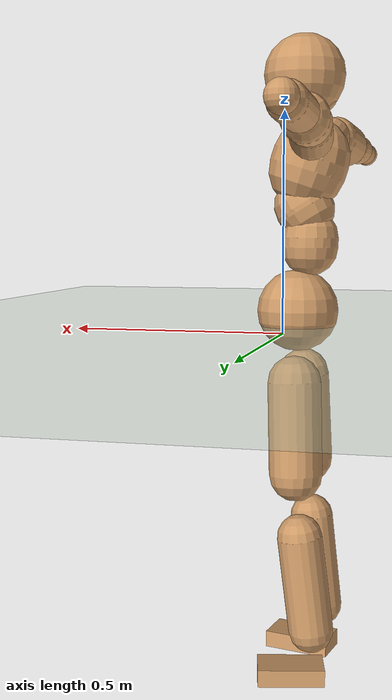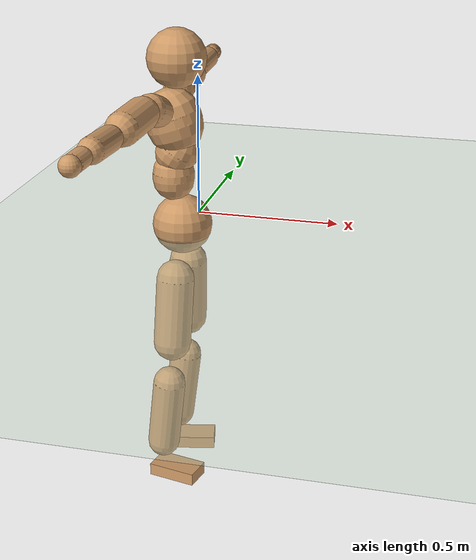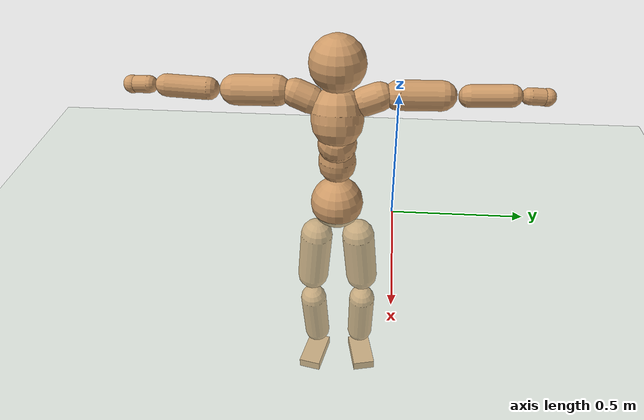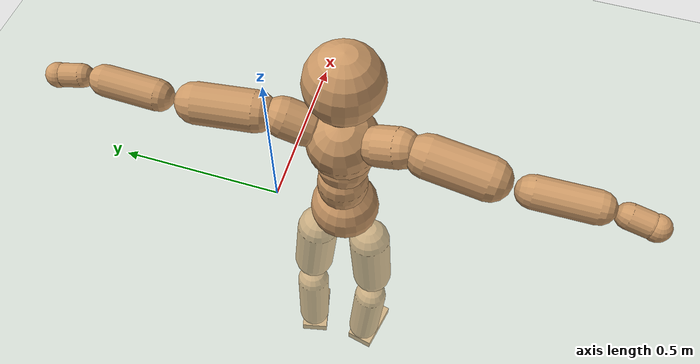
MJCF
<mujoco model="humanoid">
  <compiler coordinate="local"/>
  <default>
    <joint damping="0.0" armature="0.01" stiffness="0.0" limited="true"/>
    <geom conaffinity="1" condim="3" contype="7" margin="0.001" rgba="0.8 0.6 .4 1"/>
  </default>
  <asset>
    <texture type="skybox" builtin="gradient" rgb1=".4 .5 .6" rgb2="0 0 0" width="100" height="100"/>
    <texture builtin="flat" height="1278" mark="cross" markrgb="1 1 1" name="texgeom" random="0.01" rgb1="0.8 0.6 0.4" rgb2="0.8 0.6 0.4" type="cube" width="127"/>
    <texture builtin="checker" height="100" name="texplane" rgb1="0 0 0" rgb2="0.8 0.8 0.8" type="2d" width="100"/>
    <material name="MatPlane" reflectance="0.5" shininess="1" specular="1" texrepeat="60 60" texture="texplane"/>
    <material name="geom" texture="texgeom" texuniform="true"/>
  </asset>
  <worldbody>
    <light cutoff="100" diffuse="1 1 1" dir="-0 0 -1.3" directional="true" exponent="1" pos="0 0 1.3" specular=".1 .1 .1"/>
    <geom conaffinity="1" condim="3" name="floor" pos="0 0 0" rgba="0.8 0.9 0.8 1" size="100 100 .2" type="plane" material="MatPlane"/>
    <body name="Pelvis" pos="0.0014 -0.2156 0.0365">
      <freejoint name="Pelvis"/>
      <geom type="sphere" contype="1" conaffinity="1" density="500" size="0.1015" pos="0.0000 0.0000 0.0000" name="Pelvis"/>
      <body name="L_Hip" pos="-0.0043 0.0791 -0.0939">
        <joint name="L_Hip_x" type="hinge" pos="0 0 0" axis="1 0 0" stiffness="800" damping="80" armature="0.02" range="-180.0000 180.0000"/>
        <joint name="L_Hip_y" type="hinge" pos="0 0 0" axis="0 1 0" stiffness="800" damping="80" armature="0.02" range="-180.0000 180.0000"/>
        <joint name="L_Hip_z" type="hinge" pos="0 0 0" axis="0 0 1" stiffness="800" damping="80" armature="0.02" range="-180.0000 180.0000"/>
        <geom type="capsule" contype="1" conaffinity="1" density="500" fromto="-0.0026 0.0059 -0.0753 -0.0106 0.0234 -0.3013" size="0.0652" name="L_Hip"/>
        <body name="L_Knee" pos="-0.0132 0.0293 -0.3766">
          <joint name="L_Knee_x" type="hinge" pos="0 0 0" axis="1 0 0" stiffness="800" damping="80" armature="0.02" range="-180.0000 180.0000"/>
          <joint name="L_Knee_y" type="hinge" pos="0 0 0" axis="0 1 0" stiffness="800" damping="80" armature="0.02" range="-180.0000 180.0000"/>
          <joint name="L_Knee_z" type="hinge" pos="0 0 0" axis="0 0 1" stiffness="800" damping="80" armature="0.02" range="-180.0000 180.0000"/>
          <geom type="capsule" contype="1" conaffinity="1" density="500" fromto="-0.0096 -0.0024 -0.0802 -0.0386 -0.0096 -0.3208" size="0.0557" name="L_Knee"/>
          <body name="L_Ankle" pos="-0.0482 -0.012 -0.401">
            <joint name="L_Ankle_x" type="hinge" pos="0 0 0" axis="1 0 0" stiffness="800" damping="80" armature="0.02" range="-180.0000 180.0000"/>
            <joint name="L_Ankle_y" type="hinge" pos="0 0 0" axis="0 1 0" stiffness="800" damping="80" armature="0.02" range="-180.0000 180.0000"/>
            <joint name="L_Ankle_z" type="hinge" pos="0 0 0" axis="0 0 1" stiffness="800" damping="80" armature="0.02" range="-180.0000 180.0000"/>
            <geom type="box" contype="1" conaffinity="1" density="500" pos="0.0585 0.0129 -0.0286" size="0.083 0.0476 0.0216" quat="0.9941 0.0000 0.0000 0.1082" name="L_Ankle"/>
            <body name="L_Toe" pos="0.117 0.0258 -0.0572">
              <joint name="L_Toe_x" type="hinge" pos="0 0 0" axis="1 0 0" stiffness="500" damping="50" armature="0.02" range="-180.0000 180.0000"/>
              <joint name="L_Toe_y" type="hinge" pos="0 0 0" axis="0 1 0" stiffness="500" damping="50" armature="0.02" range="-180.0000 180.0000"/>
              <joint name="L_Toe_z" type="hinge" pos="0 0 0" axis="0 0 1" stiffness="500" damping="50" armature="0.02" range="-180.0000 180.0000"/>
              <geom type="box" contype="1" conaffinity="1" density="500" pos="0.0000 0.0000 0.0280" size="0.001 0.0024 0.001" quat="0.9934 0.0000 0.0000 0.1143" name="L_Toe"/>
            </body>
          </body>
        </body>
      </body>
      <body name="R_Hip" pos="-0.0006 -0.0764 -0.0939">
        <joint name="R_Hip_x" type="hinge" pos="0 0 0" axis="1 0 0" stiffness="800" damping="80" armature="0.02" range="-180.0000 180.0000"/>
        <joint name="R_Hip_y" type="hinge" pos="0 0 0" axis="0 1 0" stiffness="800" damping="80" armature="0.02" range="-180.0000 180.0000"/>
        <joint name="R_Hip_z" type="hinge" pos="0 0 0" axis="0 0 1" stiffness="800" damping="80" armature="0.02" range="-180.0000 180.0000"/>
        <geom type="capsule" contype="1" conaffinity="1" density="500" fromto="-0.0029 -0.0073 -0.0766 -0.0117 -0.0290 -0.3063" size="0.0644" name="R_Hip"/>
        <body name="R_Knee" pos="-0.0146 -0.0363 -0.3829">
          <joint name="R_Knee_x" type="hinge" pos="0 0 0" axis="1 0 0" stiffness="800" damping="80" armature="0.02" range="-180.0000 180.0000"/>
          <joint name="R_Knee_y" type="hinge" pos="0 0 0" axis="0 1 0" stiffness="800" damping="80" armature="0.02" range="-180.0000 180.0000"/>
          <joint name="R_Knee_z" type="hinge" pos="0 0 0" axis="0 0 1" stiffness="800" damping="80" armature="0.02" range="-180.0000 180.0000"/>
          <geom type="capsule" contype="1" conaffinity="1" density="500" fromto="-0.0093 0.0029 -0.0808 -0.0374 0.0117 -0.3230" size="0.0559" name="R_Knee"/>
          <body name="R_Ankle" pos="-0.0467 0.0147 -0.4038">
            <joint name="R_Ankle_x" type="hinge" pos="0 0 0" axis="1 0 0" stiffness="800" damping="80" armature="0.02" range="-180.0000 180.0000"/>
            <joint name="R_Ankle_y" type="hinge" pos="0 0 0" axis="0 1 0" stiffness="800" damping="80" armature="0.02" range="-180.0000 180.0000"/>
            <joint name="R_Ankle_z" type="hinge" pos="0 0 0" axis="0 0 1" stiffness="800" damping="80" armature="0.02" range="-180.0000 180.0000"/>
            <geom type="box" contype="1" conaffinity="1" density="500" pos="0.0606 -0.0129 -0.0250" size="0.0851 0.0472 0.0216" quat="0.9945 0.0000 0.0000 -0.1044" name="R_Ankle"/>
            <body name="R_Toe" pos="0.1213 -0.0258 -0.0499">
              <joint name="R_Toe_x" type="hinge" pos="0 0 0" axis="1 0 0" stiffness="500" damping="50" armature="0.02" range="-180.0000 180.0000"/>
              <joint name="R_Toe_y" type="hinge" pos="0 0 0" axis="0 1 0" stiffness="500" damping="50" armature="0.02" range="-180.0000 180.0000"/>
              <joint name="R_Toe_z" type="hinge" pos="0 0 0" axis="0 0 1" stiffness="500" damping="50" armature="0.02" range="-180.0000 180.0000"/>
              <geom type="box" contype="1" conaffinity="1" density="500" pos="0.0000 0.0000 0.0258" size="0.001 0.0024 0.0011" quat="0.9955 0.0000 0.0000 -0.0950" name="R_Toe"/>
            </body>
          </body>
        </body>
      </body>
      <body name="Torso" pos="-0.0273 -0.0013 0.1081">
        <joint name="Torso_x" type="hinge" pos="0 0 0" axis="1 0 0" stiffness="1000" damping="100" armature="0.02" range="-180.0000 180.0000"/>
        <joint name="Torso_y" type="hinge" pos="0 0 0" axis="0 1 0" stiffness="1000" damping="100" armature="0.02" range="-180.0000 180.0000"/>
        <joint name="Torso_z" type="hinge" pos="0 0 0" axis="0 0 1" stiffness="1000" damping="100" armature="0.02" range="-180.0000 180.0000"/>
        <geom type="capsule" contype="1" conaffinity="1" density="500" fromto="-0.0013 0.0012 0.0724 -0.0009 0.0008 0.0483" size="0.070494" name="Torso"/>
        <body name="Spine" pos="-0.0022 0.0019 0.1207">
          <joint name="Spine_x" type="hinge" pos="0 0 0" axis="1 0 0" stiffness="1000" damping="100" armature="0.02" range="-180.0000 180.0000"/>
          <joint name="Spine_y" type="hinge" pos="0 0 0" axis="0 1 0" stiffness="1000" damping="100" armature="0.02" range="-180.0000 180.0000"/>
          <joint name="Spine_z" type="hinge" pos="0 0 0" axis="0 0 1" stiffness="1000" damping="100" armature="0.02" range="-180.0000 180.0000"/>
          <geom type="capsule" contype="1" conaffinity="1" density="500" fromto="0.0183 0.0007 0.0299 0.0122 0.0004 0.0199" size="0.072168" name="Spine"/>
          <body name="Chest" pos="0.0305 0.0011 0.0499">
            <joint name="Chest_x" type="hinge" pos="0 0 0" axis="1 0 0" stiffness="1000" damping="100" armature="0.02" range="-180.0000 180.0000"/>
            <joint name="Chest_y" type="hinge" pos="0 0 0" axis="0 1 0" stiffness="1000" damping="100" armature="0.02" range="-180.0000 180.0000"/>
            <joint name="Chest_z" type="hinge" pos="0 0 0" axis="0 0 1" stiffness="1000" damping="100" armature="0.02" range="-180.0000 180.0000"/>
            <geom type="capsule" contype="1" conaffinity="1" density="500" fromto="-0.0314 -0.0007 0.0962 -0.0209 -0.0005 0.0642" size="0.095325" name="Chest"/>
            <body name="Neck" pos="-0.064 -0.0013 0.227">
              <joint name="Neck_x" type="hinge" pos="0 0 0" axis="1 0 0" stiffness="500" damping="50" armature="0.02" range="-180.0000 180.0000"/>
              <joint name="Neck_y" type="hinge" pos="0 0 0" axis="0 1 0" stiffness="500" damping="50" armature="0.02" range="-180.0000 180.0000"/>
              <joint name="Neck_z" type="hinge" pos="0 0 0" axis="0 0 1" stiffness="500" damping="50" armature="0.02" range="-180.0000 180.0000"/>
              <geom type="capsule" contype="1" conaffinity="1" density="500" fromto="0.0100 0.0008 0.0124 0.0400 0.0033 0.0495" size="0.039246" name="Neck"/>
              <body name="Head" pos="0.05 0.0041 0.0618">
                <joint name="Head_x" type="hinge" pos="0 0 0" axis="1 0 0" stiffness="500" damping="50" armature="0.02" range="-180.0000 180.0000"/>
                <joint name="Head_y" type="hinge" pos="0 0 0" axis="0 1 0" stiffness="500" damping="50" armature="0.02" range="-180.0000 180.0000"/>
                <joint name="Head_z" type="hinge" pos="0 0 0" axis="0 0 1" stiffness="500" damping="50" armature="0.02" range="-180.0000 180.0000"/>
                <geom type="sphere" contype="1" conaffinity="1" density="500" size="0.0994" pos="0.0000 0.0000 0.0000" name="Head"/>
              </body>
            </body>
            <body name="L_Thorax" pos="-0.0437 0.0775 0.1278">
              <joint name="L_Thorax_x" type="hinge" pos="0 0 0" axis="1 0 0" stiffness="500" damping="50" armature="0.02" range="-180.0000 180.0000"/>
              <joint name="L_Thorax_y" type="hinge" pos="0 0 0" axis="0 1 0" stiffness="500" damping="50" armature="0.02" range="-180.0000 180.0000"/>
              <joint name="L_Thorax_z" type="hinge" pos="0 0 0" axis="0 0 1" stiffness="500" damping="50" armature="0.02" range="-180.0000 180.0000"/>
              <geom type="capsule" contype="1" conaffinity="1" density="500" fromto="-0.0015 0.0170 0.0062 -0.0061 0.0680 0.0248" size="0.0524" name="L_Thorax"/>
              <body name="L_Shoulder" pos="-0.0076 0.085 0.031">
                <joint name="L_Shoulder_x" type="hinge" pos="0 0 0" axis="1 0 0" stiffness="500" damping="50" armature="0.02" range="-720.0000 720.0000"/>
                <joint name="L_Shoulder_y" type="hinge" pos="0 0 0" axis="0 1 0" stiffness="500" damping="50" armature="0.02" range="-720.0000 720.0000"/>
                <joint name="L_Shoulder_z" type="hinge" pos="0 0 0" axis="0 0 1" stiffness="500" damping="50" armature="0.02" range="-720.0000 720.0000"/>
                <geom type="capsule" contype="1" conaffinity="1" density="500" fromto="-0.0051 0.0507 -0.0018 -0.0204 0.2028 -0.0070" size="0.0537" name="L_Shoulder"/>
                <body name="L_Elbow" pos="-0.0255 0.2535 -0.0088">
                  <joint name="L_Elbow_x" type="hinge" pos="0 0 0" axis="1 0 0" stiffness="500" damping="50" armature="0.02" range="-720.0000 720.0000"/>
                  <joint name="L_Elbow_y" type="hinge" pos="0 0 0" axis="0 1 0" stiffness="500" damping="50" armature="0.02" range="-720.0000 720.0000"/>
                  <joint name="L_Elbow_z" type="hinge" pos="0 0 0" axis="0 0 1" stiffness="500" damping="50" armature="0.02" range="-720.0000 720.0000"/>
                  <geom type="capsule" contype="1" conaffinity="1" density="500" fromto="0.0001 0.0475 0.0019 0.0005 0.1899 0.0076" size="0.0408" name="L_Elbow"/>
                  <body name="L_Wrist" pos="0.0006 0.2374 0.0095">
                    <joint name="L_Wrist_x" type="hinge" pos="0 0 0" axis="1 0 0" stiffness="300" damping="30" armature="0.02" range="-180.0000 180.0000"/>
                    <joint name="L_Wrist_y" type="hinge" pos="0 0 0" axis="0 1 0" stiffness="300" damping="30" armature="0.02" range="-180.0000 180.0000"/>
                    <joint name="L_Wrist_z" type="hinge" pos="0 0 0" axis="0 0 1" stiffness="300" damping="30" armature="0.02" range="-180.0000 180.0000"/>
                    <geom type="capsule" contype="1" conaffinity="1" density="500" fromto="-0.0026 0.0159 -0.0019 -0.0105 0.0637 -0.0076" size="0.0304" name="L_Wrist"/>
                    <body name="L_Hand" pos="-0.0131 0.0796 -0.0095">
                      <joint name="L_Hand_x" type="hinge" pos="0 0 0" axis="1 0 0" stiffness="300" damping="30" armature="0.02" range="-180.0000 180.0000"/>
                      <joint name="L_Hand_y" type="hinge" pos="0 0 0" axis="0 1 0" stiffness="300" damping="30" armature="0.02" range="-180.0000 180.0000"/>
                      <joint name="L_Hand_z" type="hinge" pos="0 0 0" axis="0 0 1" stiffness="300" damping="30" armature="0.02" range="-180.0000 180.0000"/>
                      <geom type="sphere" contype="1" conaffinity="1" density="500" size="0.0322" pos="0.0000 0.0000 0.0000" name="L_Hand"/>
                    </body>
                  </body>
                </body>
              </body>
            </body>
            <body name="R_Thorax" pos="-0.0491 -0.0798 0.1264">
              <joint name="R_Thorax_x" type="hinge" pos="0 0 0" axis="1 0 0" stiffness="500" damping="50" armature="0.02" range="-180.0000 180.0000"/>
              <joint name="R_Thorax_y" type="hinge" pos="0 0 0" axis="0 1 0" stiffness="500" damping="50" armature="0.02" range="-180.0000 180.0000"/>
              <joint name="R_Thorax_z" type="hinge" pos="0 0 0" axis="0 0 1" stiffness="500" damping="50" armature="0.02" range="-180.0000 180.0000"/>
              <geom type="capsule" contype="1" conaffinity="1" density="500" fromto="-0.0018 -0.0177 0.0069 -0.0071 -0.0707 0.0278" size="0.0517" name="R_Thorax"/>
              <body name="R_Shoulder" pos="-0.0088 -0.0884 0.0347">
                <joint name="R_Shoulder_x" type="hinge" pos="0 0 0" axis="1 0 0" stiffness="500" damping="50" armature="0.02" range="-720.0000 720.0000"/>
                <joint name="R_Shoulder_y" type="hinge" pos="0 0 0" axis="0 1 0" stiffness="500" damping="50" armature="0.02" range="-720.0000 720.0000"/>
                <joint name="R_Shoulder_z" type="hinge" pos="0 0 0" axis="0 0 1" stiffness="500" damping="50" armature="0.02" range="-720.0000 720.0000"/>
                <geom type="capsule" contype="1" conaffinity="1" density="500" fromto="-0.0042 -0.0503 -0.0030 -0.0169 -0.2013 -0.0119" size="0.0556" name="R_Shoulder"/>
                <body name="R_Elbow" pos="-0.0212 -0.2516 -0.0149">
                  <joint name="R_Elbow_x" type="hinge" pos="0 0 0" axis="1 0 0" stiffness="500" damping="50" armature="0.02" range="-720.0000 720.0000"/>
                  <joint name="R_Elbow_y" type="hinge" pos="0 0 0" axis="0 1 0" stiffness="500" damping="50" armature="0.02" range="-720.0000 720.0000"/>
                  <joint name="R_Elbow_z" type="hinge" pos="0 0 0" axis="0 0 1" stiffness="500" damping="50" armature="0.02" range="-720.0000 720.0000"/>
                  <geom type="capsule" contype="1" conaffinity="1" density="500" fromto="-0.0006 -0.0497 0.0021 -0.0025 -0.1989 0.0086" size="0.0413" name="R_Elbow"/>
                  <body name="R_Wrist" pos="-0.0032 -0.2486 0.0107">
                    <joint name="R_Wrist_x" type="hinge" pos="0 0 0" axis="1 0 0" stiffness="300" damping="30" armature="0.02" range="-180.0000 180.0000"/>
                    <joint name="R_Wrist_y" type="hinge" pos="0 0 0" axis="0 1 0" stiffness="300" damping="30" armature="0.02" range="-180.0000 180.0000"/>
                    <joint name="R_Wrist_z" type="hinge" pos="0 0 0" axis="0 0 1" stiffness="300" damping="30" armature="0.02" range="-180.0000 180.0000"/>
                    <geom type="capsule" contype="1" conaffinity="1" density="500" fromto="-0.0021 -0.0164 -0.0015 -0.0086 -0.0656 -0.0059" size="0.0316" name="R_Wrist"/>
                    <body name="R_Hand" pos="-0.0107 -0.0819 -0.0074">
                      <joint name="R_Hand_x" type="hinge" pos="0 0 0" axis="1 0 0" stiffness="300" damping="30" armature="0.02" range="-180.0000 180.0000"/>
                      <joint name="R_Hand_y" type="hinge" pos="0 0 0" axis="0 1 0" stiffness="300" damping="30" armature="0.02" range="-180.0000 180.0000"/>
                      <joint name="R_Hand_z" type="hinge" pos="0 0 0" axis="0 0 1" stiffness="300" damping="30" armature="0.02" range="-180.0000 180.0000"/>
                      <geom type="sphere" contype="1" conaffinity="1" density="500" size="0.0330" pos="0.0000 0.0000 0.0000" name="R_Hand"/>
                    </body>
                  </body>
                </body>
              </body>
            </body>
          </body>
        </body>
      </body>
    </body>
  </worldbody>
  <actuator>
    <motor name="L_Hip_x" joint="L_Hip_x" gear="500"/>
    <motor name="L_Hip_y" joint="L_Hip_y" gear="500"/>
    <motor name="L_Hip_z" joint="L_Hip_z" gear="500"/>
    <motor name="L_Knee_x" joint="L_Knee_x" gear="500"/>
    <motor name="L_Knee_y" joint="L_Knee_y" gear="500"/>
    <motor name="L_Knee_z" joint="L_Knee_z" gear="500"/>
    <motor name="L_Ankle_x" joint="L_Ankle_x" gear="500"/>
    <motor name="L_Ankle_y" joint="L_Ankle_y" gear="500"/>
    <motor name="L_Ankle_z" joint="L_Ankle_z" gear="500"/>
    <motor name="L_Toe_x" joint="L_Toe_x" gear="500"/>
    <motor name="L_Toe_y" joint="L_Toe_y" gear="500"/>
    <motor name="L_Toe_z" joint="L_Toe_z" gear="500"/>
    <motor name="R_Hip_x" joint="R_Hip_x" gear="500"/>
    <motor name="R_Hip_y" joint="R_Hip_y" gear="500"/>
    <motor name="R_Hip_z" joint="R_Hip_z" gear="500"/>
    <motor name="R_Knee_x" joint="R_Knee_x" gear="500"/>
    <motor name="R_Knee_y" joint="R_Knee_y" gear="500"/>
    <motor name="R_Knee_z" joint="R_Knee_z" gear="500"/>
    <motor name="R_Ankle_x" joint="R_Ankle_x" gear="500"/>
    <motor name="R_Ankle_y" joint="R_Ankle_y" gear="500"/>
    <motor name="R_Ankle_z" joint="R_Ankle_z" gear="500"/>
    <motor name="R_Toe_x" joint="R_Toe_x" gear="500"/>
    <motor name="R_Toe_y" joint="R_Toe_y" gear="500"/>
    <motor name="R_Toe_z" joint="R_Toe_z" gear="500"/>
    <motor name="Torso_x" joint="Torso_x" gear="500"/>
    <motor name="Torso_y" joint="Torso_y" gear="500"/>
    <motor name="Torso_z" joint="Torso_z" gear="500"/>
    <motor name="Spine_x" joint="Spine_x" gear="500"/>
    <motor name="Spine_y" joint="Spine_y" gear="500"/>
    <motor name="Spine_z" joint="Spine_z" gear="500"/>
    <motor name="Chest_x" joint="Chest_x" gear="500"/>
    <motor name="Chest_y" joint="Chest_y" gear="500"/>
    <motor name="Chest_z" joint="Chest_z" gear="500"/>
    <motor name="Neck_x" joint="Neck_x" gear="500"/>
    <motor name="Neck_y" joint="Neck_y" gear="500"/>
    <motor name="Neck_z" joint="Neck_z" gear="500"/>
    <motor name="Head_x" joint="Head_x" gear="500"/>
    <motor name="Head_y" joint="Head_y" gear="500"/>
    <motor name="Head_z" joint="Head_z" gear="500"/>
    <motor name="L_Thorax_x" joint="L_Thorax_x" gear="500"/>
    <motor name="L_Thorax_y" joint="L_Thorax_y" gear="500"/>
    <motor name="L_Thorax_z" joint="L_Thorax_z" gear="500"/>
    <motor name="L_Shoulder_x" joint="L_Shoulder_x" gear="500"/>
    <motor name="L_Shoulder_y" joint="L_Shoulder_y" gear="500"/>
    <motor name="L_Shoulder_z" joint="L_Shoulder_z" gear="500"/>
    <motor name="L_Elbow_x" joint="L_Elbow_x" gear="500"/>
    <motor name="L_Elbow_y" joint="L_Elbow_y" gear="500"/>
    <motor name="L_Elbow_z" joint="L_Elbow_z" gear="500"/>
    <motor name="L_Wrist_x" joint="L_Wrist_x" gear="500"/>
    <motor name="L_Wrist_y" joint="L_Wrist_y" gear="500"/>
    <motor name="L_Wrist_z" joint="L_Wrist_z" gear="500"/>
    <motor name="L_Hand_x" joint="L_Hand_x" gear="500"/>
    <motor name="L_Hand_y" joint="L_Hand_y" gear="500"/>
    <motor name="L_Hand_z" joint="L_Hand_z" gear="500"/>
    <motor name="R_Thorax_x" joint="R_Thorax_x" gear="500"/>
    <motor name="R_Thorax_y" joint="R_Thorax_y" gear="500"/>
    <motor name="R_Thorax_z" joint="R_Thorax_z" gear="500"/>
    <motor name="R_Shoulder_x" joint="R_Shoulder_x" gear="500"/>
    <motor name="R_Shoulder_y" joint="R_Shoulder_y" gear="500"/>
    <motor name="R_Shoulder_z" joint="R_Shoulder_z" gear="500"/>
    <motor name="R_Elbow_x" joint="R_Elbow_x" gear="500"/>
    <motor name="R_Elbow_y" joint="R_Elbow_y" gear="500"/>
    <motor name="R_Elbow_z" joint="R_Elbow_z" gear="500"/>
    <motor name="R_Wrist_x" joint="R_Wrist_x" gear="500"/>
    <motor name="R_Wrist_y" joint="R_Wrist_y" gear="500"/>
    <motor name="R_Wrist_z" joint="R_Wrist_z" gear="500"/>
    <motor name="R_Hand_x" joint="R_Hand_x" gear="500"/>
    <motor name="R_Hand_y" joint="R_Hand_y" gear="500"/>
    <motor name="R_Hand_z" joint="R_Hand_z" gear="500"/>
  </actuator>
  <contact>
    <exclude body1="Torso" body2="Chest"/>
    <exclude body1="Head" body2="Chest"/>
    <exclude body1="R_Knee" body2="R_Toe"/>
    <exclude body1="R_Knee" body2="L_Ankle"/>
    <exclude body1="R_Knee" body2="L_Toe"/>
    <exclude body1="L_Knee" body2="L_Toe"/>
    <exclude body1="L_Knee" body2="R_Ankle"/>
    <exclude body1="L_Knee" body2="R_Toe"/>
    <exclude body1="L_Shoulder" body2="Chest"/>
    <exclude body1="R_Shoulder" body2="Chest"/>
  </contact>
  <sensor/>
  <size njmax="700" nconmax="700"/>
</mujoco>
